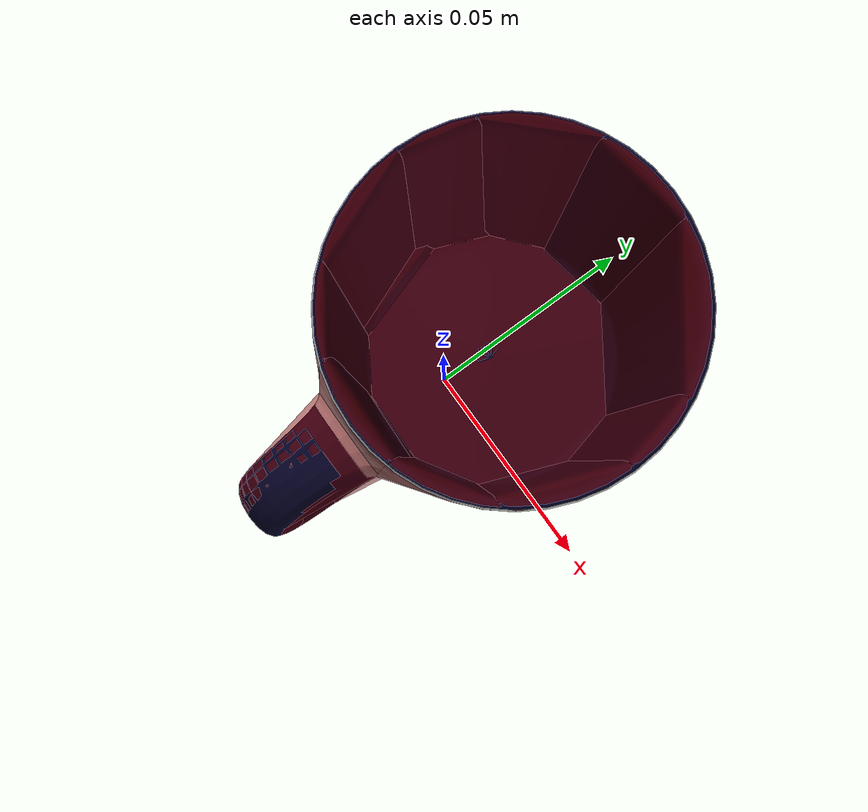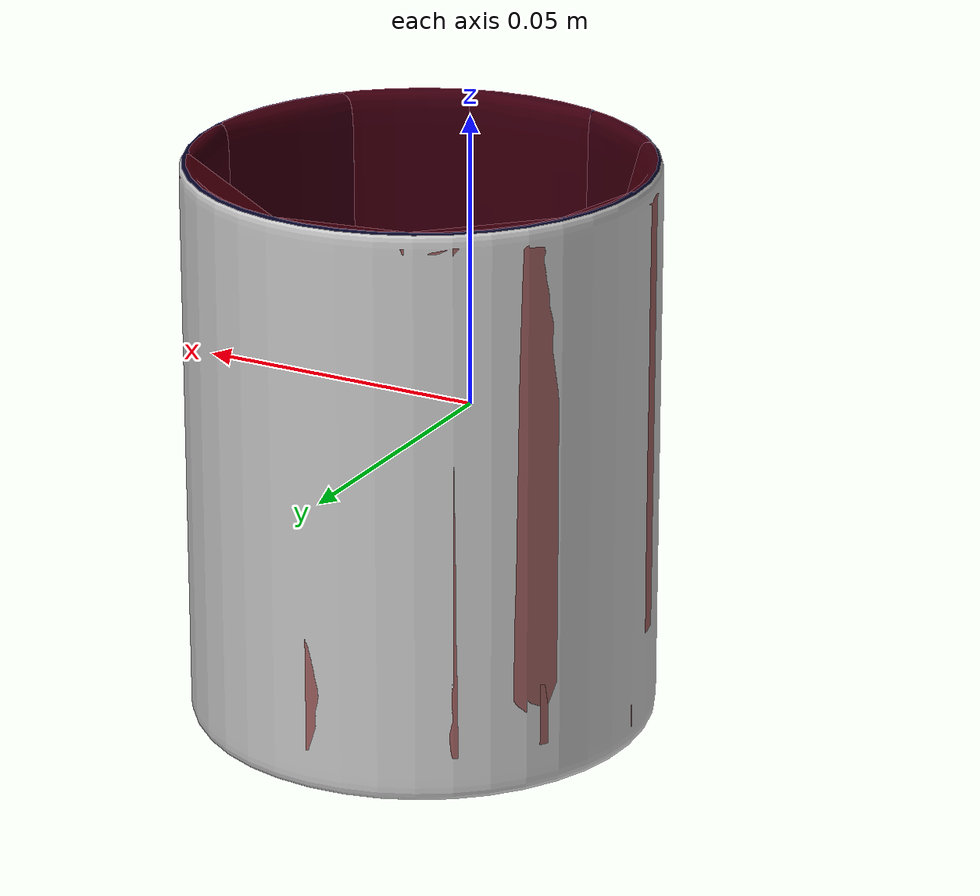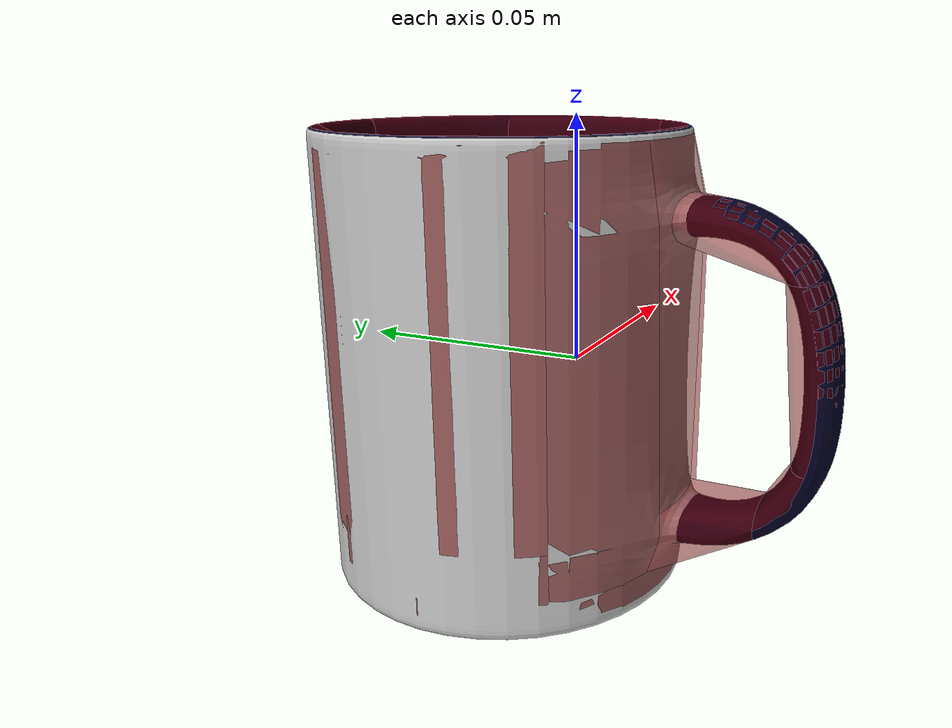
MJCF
<mujoco model="mug_64">
  <asset>
    <mesh file="visual/model_normalized_0.obj" name="model_normalized_0_vis" scale="0.11 0.11 0.11" refquat="0.7071067811865472 0.0 0.0 0.7071067811865476"/>
    <mesh file="visual/model_normalized_1.obj" name="model_normalized_1_vis" scale="0.11 0.11 0.11" refquat="0.7071067811865472 0.0 0.0 0.7071067811865476"/>
    <material name="Mutra" specular="0.5" shininess="0.5625" rgba="0.009897 0.000000 0.137584 1.0"/>
    <material name="material.084" specular="0.5" shininess="0.5625" rgba="0.800000 0.800000 0.800000 1.0"/>
    <mesh file="collision/collision_mesh_collision_0.obj" name="mug_collision_mesh_0" scale="0.11 0.11 0.11" refquat="0.7071067811865472 0.0 0.0 0.7071067811865476"/>
    <mesh file="collision/collision_mesh_collision_1.obj" name="mug_collision_mesh_1" scale="0.11 0.11 0.11" refquat="0.7071067811865472 0.0 0.0 0.7071067811865476"/>
    <mesh file="collision/collision_mesh_collision_2.obj" name="mug_collision_mesh_2" scale="0.11 0.11 0.11" refquat="0.7071067811865472 0.0 0.0 0.7071067811865476"/>
    <mesh file="collision/collision_mesh_collision_3.obj" name="mug_collision_mesh_3" scale="0.11 0.11 0.11" refquat="0.7071067811865472 0.0 0.0 0.7071067811865476"/>
    <mesh file="collision/collision_mesh_collision_4.obj" name="mug_collision_mesh_4" scale="0.11 0.11 0.11" refquat="0.7071067811865472 0.0 0.0 0.7071067811865476"/>
    <mesh file="collision/collision_mesh_collision_5.obj" name="mug_collision_mesh_5" scale="0.11 0.11 0.11" refquat="0.7071067811865472 0.0 0.0 0.7071067811865476"/>
    <mesh file="collision/collision_mesh_collision_6.obj" name="mug_collision_mesh_6" scale="0.11 0.11 0.11" refquat="0.7071067811865472 0.0 0.0 0.7071067811865476"/>
    <mesh file="collision/collision_mesh_collision_7.obj" name="mug_collision_mesh_7" scale="0.11 0.11 0.11" refquat="0.7071067811865472 0.0 0.0 0.7071067811865476"/>
    <mesh file="collision/collision_mesh_collision_8.obj" name="mug_collision_mesh_8" scale="0.11 0.11 0.11" refquat="0.7071067811865472 0.0 0.0 0.7071067811865476"/>
    <mesh file="collision/collision_mesh_collision_9.obj" name="mug_collision_mesh_9" scale="0.11 0.11 0.11" refquat="0.7071067811865472 0.0 0.0 0.7071067811865476"/>
    <mesh file="collision/collision_mesh_collision_10.obj" name="mug_collision_mesh_10" scale="0.11 0.11 0.11" refquat="0.7071067811865472 0.0 0.0 0.7071067811865476"/>
    <mesh file="collision/collision_mesh_collision_11.obj" name="mug_collision_mesh_11" scale="0.11 0.11 0.11" refquat="0.7071067811865472 0.0 0.0 0.7071067811865476"/>
    <mesh file="collision/collision_mesh_collision_12.obj" name="mug_collision_mesh_12" scale="0.11 0.11 0.11" refquat="0.7071067811865472 0.0 0.0 0.7071067811865476"/>
    <mesh file="collision/collision_mesh_collision_13.obj" name="mug_collision_mesh_13" scale="0.11 0.11 0.11" refquat="0.7071067811865472 0.0 0.0 0.7071067811865476"/>
    <mesh file="collision/collision_mesh_collision_14.obj" name="mug_collision_mesh_14" scale="0.11 0.11 0.11" refquat="0.7071067811865472 0.0 0.0 0.7071067811865476"/>
    <mesh file="collision/collision_mesh_collision_15.obj" name="mug_collision_mesh_15" scale="0.11 0.11 0.11" refquat="0.7071067811865472 0.0 0.0 0.7071067811865476"/>
  </asset>
  <default>
    <default class="region">
      <geom group="1" conaffinity="0" contype="0" rgba="0 1 0 0"/>
    </default>
    <default class="collision">
      <geom group="0" rgba="0.5 0 0 0.5" density="1000.0"/>
    </default>
  </default>
  <worldbody>
    <body>
      <body name="object">
        <geom solimp="0.998 0.998 0.001" solref="0.001 1" density="100" friction="0.95 0.3 0.1" type="mesh" mesh="model_normalized_0_vis" conaffinity="0" contype="0" group="1" material="Mutra"/>
        <geom solimp="0.998 0.998 0.001" solref="0.001 1" density="100" friction="0.95 0.3 0.1" type="mesh" mesh="model_normalized_1_vis" conaffinity="0" contype="0" group="1" material="material.084"/>
        <geom class="region" name="reg_bbox" type="box" pos="0.0 0.0 1.6500000021846263e-09" size="0.038642301500000004 0.055 0.04758190635"/>
        <geom mesh="mug_collision_mesh_0" type="mesh" class="collision"/>
        <geom mesh="mug_collision_mesh_1" type="mesh" class="collision"/>
        <geom mesh="mug_collision_mesh_2" type="mesh" class="collision"/>
        <geom mesh="mug_collision_mesh_3" type="mesh" class="collision"/>
        <geom mesh="mug_collision_mesh_4" type="mesh" class="collision"/>
        <geom mesh="mug_collision_mesh_5" type="mesh" class="collision"/>
        <geom mesh="mug_collision_mesh_6" type="mesh" class="collision"/>
        <geom mesh="mug_collision_mesh_7" type="mesh" class="collision"/>
        <geom mesh="mug_collision_mesh_8" type="mesh" class="collision"/>
        <geom mesh="mug_collision_mesh_9" type="mesh" class="collision"/>
        <geom mesh="mug_collision_mesh_10" type="mesh" class="collision"/>
        <geom mesh="mug_collision_mesh_11" type="mesh" class="collision"/>
        <geom mesh="mug_collision_mesh_12" type="mesh" class="collision"/>
        <geom mesh="mug_collision_mesh_13" type="mesh" class="collision"/>
        <geom mesh="mug_collision_mesh_14" type="mesh" class="collision"/>
        <geom mesh="mug_collision_mesh_15" type="mesh" class="collision"/>
        <geom rgba="0 0 0 0" size="0.038 0.035" pos="0 0.016 0.0" type="cylinder" name="liquid" class="region"/>
        <geom rgba="0 0 0 0 " size="0.034 0.043" pos="0 0.016 0.004" type="cylinder" name="reg_int" class="region"/>
      </body>
    </body>
  </worldbody>
</mujoco>
